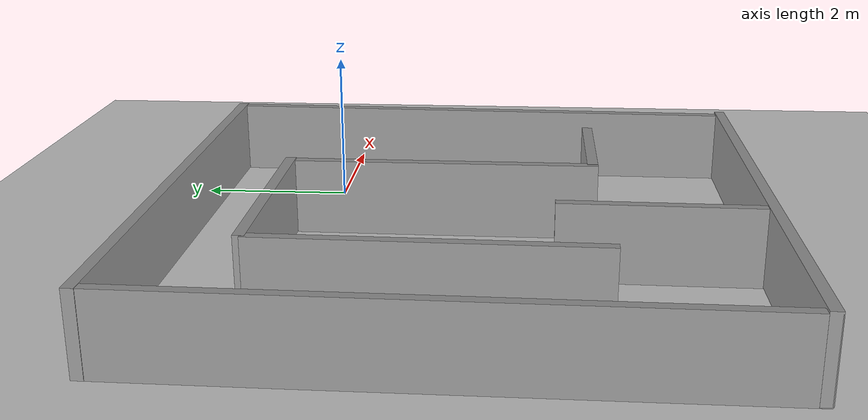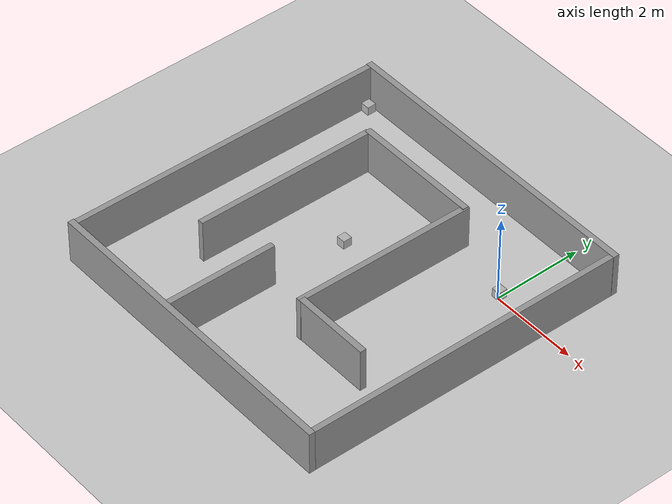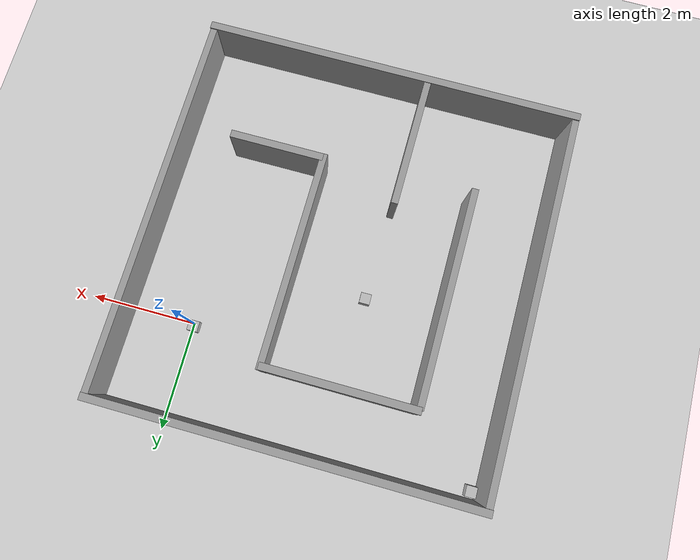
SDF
<sdf version="1.7">
 <world name="default">
  <light name="sun" type="directional">
   <pose>0 0 10 0 -0 0</pose>
   <diffuse>0.8 0.8 0.8 1</diffuse>
   <specular>0.2 0.2 0.2 1</specular>
   <attenuation>
    <range>1000</range>
    <constant>0.9</constant>
    <linear>0.01</linear>
    <quadratic>0.001</quadratic>
   </attenuation>
   <direction>-0.5 0.1 -0.9</direction>
   <spot><inner_angle>0</inner_angle><outer_angle>0</outer_angle><falloff>0</falloff></spot>
  </light>
  <model name="ground_plane">
   <static>1</static>
   <link name="link">
    <collision name="collision">
     <geometry><plane><normal>0 0 1</normal><size>100 100</size></plane></geometry>
     <surface><friction><ode><mu>100</mu><mu2>50</mu2></ode></friction></surface>
    </collision>
    <visual name="visual">
     <cast_shadows>0</cast_shadows>
     <geometry><plane><normal>0 0 1</normal><size>100 100</size></plane></geometry>
     <material>
      <script><uri>file://media/materials/scripts/gazebo.material</uri><name>Gazebo/Grey</name></script>
     </material>
    </visual>
   </link>
  </model>
  <gravity>0 0 -9.8</gravity>
  <magnetic_field>6e-06 2.3e-05 -4.2e-05</magnetic_field>
  <atmosphere type="adiabatic"/>
  <physics type="ode">
   <max_step_size>0.001</max_step_size>
   <real_time_factor>1</real_time_factor>
   <real_time_update_rate>1000</real_time_update_rate>
  </physics>
  <scene><ambient>0.4 0.4 0.4 1</ambient><background>0.7 0.7 0.7 1</background><shadows>1</shadows></scene>
  <audio><device>default</device></audio>
  <spherical_coordinates>
   <surface_model>EARTH_WGS84</surface_model>
   <latitude_deg>0</latitude_deg>
   <longitude_deg>0</longitude_deg>
   <elevation>0</elevation>
   <heading_deg>0</heading_deg>
  </spherical_coordinates>
  <model name="aruco_box_2">
   <static>true</static>
   <pose>-5.6886 1.55569 0.099991 -1.53053 1.57079 -1.53055</pose>
   <link name="link">
    <inertial>
     <mass>1</mass>
     <inertia>
      <ixx>0.166667</ixx>
      <ixy>0</ixy>
      <ixz>0</ixz>
      <iyy>0.166667</iyy>
      <iyz>0</iyz>
      <izz>0.166667</izz>
     </inertia>
    </inertial>
    <collision name="collision"><geometry><box><size>0.2 0.2 0.2</size></box></geometry></collision>
    <visual name="aruco_box_mesh">
     <geometry><mesh><uri>model://aruco_box_2/model.dae</uri><scale>0.1 0.1 0.1</scale></mesh></geometry>
    </visual>
   </link>
  </model>
  <model name="aruco_box_42">
   <static>true</static>
   <pose>-2.99619 -1.29834 0.099999 -1.35787 1.57079 -1.35786</pose>
   <link name="link">
    <inertial>
     <mass>1</mass>
     <inertia>
      <ixx>0.166667</ixx>
      <ixy>0</ixy>
      <ixz>0</ixz>
      <iyy>0.166667</iyy>
      <iyz>0</iyz>
      <izz>0.166667</izz>
     </inertia>
    </inertial>
    <collision name="collision"><geometry><box><size>0.2 0.2 0.2</size></box></geometry></collision>
    <visual name="aruco_box_mesh">
     <geometry><mesh><uri>model://aruco_box_42/model.dae</uri><scale>0.1 0.1 0.1</scale></mesh></geometry>
    </visual>
   </link>
  </model>
  <model name="aruco_box_0">
   <static>true</static>
   <pose>-0.024092 0.050956 0.100002 -2.49056 1.57079 -2.49057</pose>
   <link name="link">
    <inertial>
     <mass>1</mass>
     <inertia>
      <ixx>0.166667</ixx>
      <ixy>0</ixy>
      <ixz>0</ixz>
      <iyy>0.166667</iyy>
      <iyz>0</iyz>
      <izz>0.166667</izz>
     </inertia>
    </inertial>
    <collision name="collision"><geometry><box><size>0.2 0.2 0.2</size></box></geometry></collision>
    <visual name="aruco_box_mesh">
     <geometry><mesh><uri>model://aruco_box_0/model.dae</uri><scale>0.1 0.1 0.1</scale></mesh></geometry>
    </visual>
   </link>
  </model>
  <model name="unit_box">
   <static>true</static>
   <pose>-1.54457 -1.52955 0.489384 -0.002958 -4.5e-05 -0.011132</pose>
   <link name="link">
    <inertial>
     <mass>1</mass>
     <inertia>
      <ixx>0.166667</ixx>
      <ixy>0</ixy>
      <ixz>0</ixz>
      <iyy>0.166667</iyy>
      <iyz>0</iyz>
      <izz>0.166667</izz>
     </inertia>
    </inertial>
    <collision name="collision"><geometry><box><size>0.128966 4.11474 1</size></box></geometry></collision>
    <visual name="visual">
     <geometry><box><size>0.128966 4.11474 1</size></box></geometry>
     <material>
      <script><name>Gazebo/Grey</name><uri>file://media/materials/scripts/gazebo.material</uri></script>
     </material>
    </visual>
   </link>
  </model>
  <model name="unit_box_0">
   <static>true</static>
   <pose>-2.94772 0.454798 0.5 0 -0 0</pose>
   <link name="link">
    <inertial>
     <mass>1</mass>
     <inertia>
      <ixx>0.166667</ixx>
      <ixy>0</ixy>
      <ixz>0</ixz>
      <iyy>0.166667</iyy>
      <iyz>0</iyz>
      <izz>0.166667</izz>
     </inertia>
    </inertial>
    <collision name="collision"><geometry><box><size>2.9183 0.139434 1</size></box></geometry></collision>
    <visual name="visual">
     <geometry><box><size>2.9183 0.139434 1</size></box></geometry>
     <material>
      <script><name>Gazebo/Grey</name><uri>file://media/materials/scripts/gazebo.material</uri></script>
     </material>
    </visual>
   </link>
  </model>
  <model name="unit_box_clone">
   <static>true</static>
   <pose>-5.89456 -1.91593 0.484747 0.002958 4.5e-05 -0.011129</pose>
   <link name="link">
    <inertial>
     <mass>1</mass>
     <inertia>
      <ixx>0.166667</ixx>
      <ixy>0</ixy>
      <ixz>0</ixz>
      <iyy>0.166667</iyy>
      <iyz>0</iyz>
      <izz>0.166667</izz>
     </inertia>
    </inertial>
    <collision name="collision"><geometry><box><size>0.128966 7.40328 1</size></box></geometry></collision>
    <visual name="visual">
     <geometry><box><size>0.128966 7.40328 1</size></box></geometry>
     <material>
      <script><name>Gazebo/Grey</name><uri>file://media/materials/scripts/gazebo.material</uri></script>
     </material>
    </visual>
   </link>
  </model>
  <model name="unit_box_clone_0">
   <static>true</static>
   <pose>-4.39389 -1.61058 0.489384 0.002958 4.5e-05 -0.011129</pose>
   <link name="link">
    <inertial>
     <mass>1</mass>
     <inertia>
      <ixx>0.166667</ixx>
      <ixy>0</ixy>
      <ixz>0</ixz>
      <iyy>0.166667</iyy>
      <iyz>0</iyz>
      <izz>0.166667</izz>
     </inertia>
    </inertial>
    <collision name="collision"><geometry><box><size>0.128966 4.11474 1</size></box></geometry></collision>
    <visual name="visual">
     <geometry><box><size>0.128966 4.11474 1</size></box></geometry>
     <material>
      <script><name>Gazebo/Grey</name><uri>file://media/materials/scripts/gazebo.material</uri></script>
     </material>
    </visual>
   </link>
  </model>
  <model name="unit_box_0_clone_clone">
   <static>true</static>
   <pose>-2.3767 -5.55366 0.5 0 -0 0</pose>
   <link name="link">
    <inertial>
     <mass>1</mass>
     <inertia>
      <ixx>0.166667</ixx>
      <ixy>0</ixy>
      <ixz>0</ixz>
      <iyy>0.166667</iyy>
      <iyz>0</iyz>
      <izz>0.166667</izz>
     </inertia>
    </inertial>
    <collision name="collision"><geometry><box><size>7.24689 0.139434 1</size></box></geometry></collision>
    <visual name="visual">
     <geometry><box><size>7.24689 0.139434 1</size></box></geometry>
     <material>
      <script><name>Gazebo/Grey</name><uri>file://media/materials/scripts/gazebo.material</uri></script>
     </material>
    </visual>
   </link>
  </model>
  <model name="unit_box_clone_clone">
   <static>true</static>
   <pose>1.2104 -1.89766 0.484747 0.002958 4.5e-05 -0.011129</pose>
   <link name="link">
    <inertial>
     <mass>1</mass>
     <inertia>
      <ixx>0.166667</ixx>
      <ixy>0</ixy>
      <ixz>0</ixz>
      <iyy>0.166667</iyy>
      <iyz>0</iyz>
      <izz>0.166667</izz>
     </inertia>
    </inertial>
    <collision name="collision"><geometry><box><size>0.128966 7.40328 1</size></box></geometry></collision>
    <visual name="visual">
     <geometry><box><size>0.128966 7.40328 1</size></box></geometry>
     <material>
      <script><name>Gazebo/Grey</name><uri>file://media/materials/scripts/gazebo.material</uri></script>
     </material>
    </visual>
   </link>
  </model>
  <model name="unit_box_0_clone_clone_clone">
   <static>true</static>
   <pose>-2.30384 1.75908 0.5 0 -0 0</pose>
   <link name="link">
    <inertial>
     <mass>1</mass>
     <inertia>
      <ixx>0.166667</ixx>
      <ixy>0</ixy>
      <ixz>0</ixz>
      <iyy>0.166667</iyy>
      <iyz>0</iyz>
      <izz>0.166667</izz>
     </inertia>
    </inertial>
    <collision name="collision"><geometry><box><size>7.24688 0.139434 1</size></box></geometry></collision>
    <visual name="visual">
     <geometry><box><size>7.24688 0.139434 1</size></box></geometry>
     <material>
      <script><name>Gazebo/Grey</name><uri>file://media/materials/scripts/gazebo.material</uri></script>
     </material>
    </visual>
   </link>
  </model>
  <model name="unit_box_0_clone">
   <static>true</static>
   <pose>-0.668059 -3.51337 0.5 0 -0 0</pose>
   <link name="link">
    <inertial>
     <mass>1</mass>
     <inertia>
      <ixx>0.166667</ixx>
      <ixy>0</ixy>
      <ixz>0</ixz>
      <iyy>0.166667</iyy>
      <iyz>0</iyz>
      <izz>0.166667</izz>
     </inertia>
    </inertial>
    <collision name="collision"><geometry><box><size>1.78208 0.139434 1</size></box></geometry></collision>
    <visual name="visual">
     <geometry><box><size>1.78208 0.139434 1</size></box></geometry>
     <material>
      <script><name>Gazebo/Grey</name><uri>file://media/materials/scripts/gazebo.material</uri></script>
     </material>
    </visual>
   </link>
  </model>
  <model name="unit_box_clone_0_clone">
   <static>true</static>
   <pose>-3.06373 -4.30462 0.491411 0.002958 4.5e-05 -0.011129</pose>
   <link name="link">
    <inertial>
     <mass>1</mass>
     <inertia>
      <ixx>0.166667</ixx>
      <ixy>0</ixy>
      <ixz>0</ixz>
      <iyy>0.166667</iyy>
      <iyz>0</iyz>
      <izz>0.166667</izz>
     </inertia>
    </inertial>
    <collision name="collision"><geometry><box><size>0.128966 2.60039 1</size></box></geometry></collision>
    <visual name="visual">
     <geometry><box><size>0.128966 2.60039 1</size></box></geometry>
     <material>
      <script><name>Gazebo/Grey</name><uri>file://media/materials/scripts/gazebo.material</uri></script>
     </material>
    </visual>
   </link>
  </model>
 </world>
</sdf>
